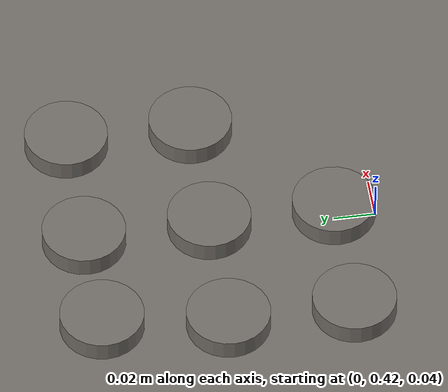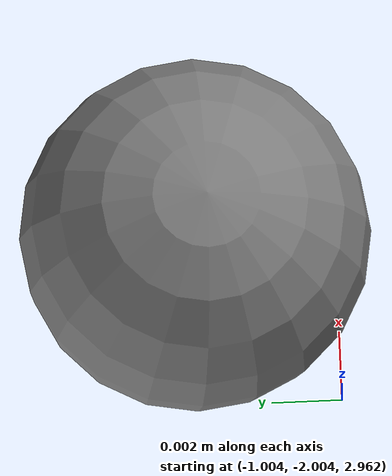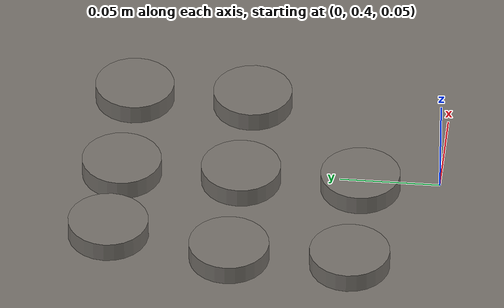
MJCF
<mujoco model="bin_picking scene">

    <compiler angle="degree" coordinate="local"/>
    <asset>
        <material name="bin_material" rgba="0.984 0.353 0.290 1.0"/>
        <material name="framing_material" rgba="0.7 0.7 0.7 1"/>
        <texture name="floor_texture" type="2d" file="bin_picking/diamond_plate.png" />
        <texture name="vancouver-canucks-texture" type="2d" file="bin_picking/vancouver-canucks-logo.png" />
        <texture name="ottawa-senators-texture" type="2d" file="bin_picking/ottawa-senators-logo.png" />
        <texture name="toronto-maple-leafs-texture" type="2d" file="bin_picking/toronto-maple-leafs-logo.png" />
        <texture name="colorado-avalanche-texture" type="2d" file="bin_picking/colorado-avalanche-logo.png" />
        <texture name="calgary-flames-texture" type="2d" file="bin_picking/calgary-flames-logo.png" />
        <texture name="montreal-canadiens-texture" type="2d" file="bin_picking/montreal-canadiens-logo.png" />
        <texture name="edmonton-oilers-texture" type="2d" file="bin_picking/edmonton-oilers-logo.png" />
        <texture name="winnipeg-jets-texture" type="2d" file="bin_picking/winnipeg-jets-logo.png" />

        <!-- Define material using the checker texture -->
        <material name="floor_material" texture="floor_texture" texrepeat="10 10" rgba="0.6 0.6 0.6 1" shininess="0.3" specular="0.3"/>
        <material name="vancouver-canucks-material" texture="vancouver-canucks-texture" rgba="0.6 0.6 0.6 1" shininess="0.3" specular="0.3"/>
        <material name="ottawa-senators-material" texture="ottawa-senators-texture" rgba="0.6 0.6 0.6 1" shininess="0.3" specular="0.3"/>
        <material name="toronto-maple-leafs-material" texture="toronto-maple-leafs-texture" rgba="0.6 0.6 0.6 1" shininess="0.3" specular="0.3"/>
        <material name="colorado-avalanche-material" texture="colorado-avalanche-texture" rgba="0.6 0.6 0.6 1" shininess="0.3" specular="0.3"/>
        <material name="calgary-flames-material" texture="calgary-flames-texture" rgba="0.6 0.6 0.6 1" shininess="0.3" specular="0.3"/>
        <material name="montreal-canadiens-material" texture="montreal-canadiens-texture" rgba="0.6 0.6 0.6 1" shininess="0.3" specular="0.3"/>
        <material name="edmonton-oilers-material" texture="edmonton-oilers-texture" rgba="0.6 0.6 0.6 1" shininess="0.3" specular="0.3"/>
        <material name="winnipeg-jets-material" texture="winnipeg-jets-texture" rgba="0.6 0.6 0.6 1" shininess="0.3" specular="0.3"/>

        <material name="shelf_material" rgba="0.6 0.4 0.2 1"/>
        <material name="cardboard_material" rgba="0.8 0.6 0.4 1"/>
    </asset>

<option timestep="0.001" integrator="implicitfast" gravity="0 0 -9.8">
  	<flag contact="enable" energy="enable"  multiccd="enable"/>
</option>
  <worldbody>
    <light pos="0 0 1.5" dir="0 0 -1" directional="true" />
    <geom
      name="floor"
      pos="0 0 -0.5"
      size="0 0 0.05"
      type="plane"
      material="floor_material"
       contype="1" conaffinity="1" friction="0.5 0.3 0.1" solref="0.02 1" solimp="0.8 0.9 0.001"
    />
    <!-- Scene Camera -->
    <site
      name="scene_camera_optical_frame"
      pos="-1.0 -2.0 2.966"
      euler="3.99 0.000 0"
    />
    <camera
      name="scene_camera"
      pos="-1.0 -2.0 2.966"
      fovy="58"
      mode="fixed"
      resolution="640 480"
      euler="0.849 0.000 0.0"
    />

      <body pos="0 0.5 0.05"  >
        <geom type="cylinder" size="0.02 0.005" material="vancouver-canucks-material" contype="1" conaffinity="1" mass="0.17" friction="0.5 0.3 0.1" solref="0.02 1" solimp="0.8 0.9 0.001" margin="0.0001"/>
        <freejoint />
      </body>
      <body pos="0 0.56 0.05"  >
        <geom type="cylinder" size="0.02 0.005" material="ottawa-senators-material" contype="1" conaffinity="1" mass="0.17" friction="0.5 0.3 0.1" solref="0.02 1" solimp="0.8 0.9 0.001" margin="0.0001"/>
        <freejoint />
      </body>
      <body pos="0.06 0.5 0.05" >
        <geom type="cylinder" size="0.02 0.005"  material="toronto-maple-leafs-material" contype="1" conaffinity="1" mass="0.17" friction="0.5 0.3 0.1" solref="0.02 1" solimp="0.8 0.9 0.001" margin="0.0001"/>
        <freejoint />
      </body>
      <body pos="0.06 0.56 0.05" >
        <geom type="cylinder" size="0.02 0.005"  material="colorado-avalanche-material" contype="1" conaffinity="1" mass="0.17" friction="0.5 0.3 0.1" solref="0.02 1" solimp="0.8 0.9 0.001" margin="0.0001"/>
        <freejoint />
      </body>
      <body pos="0 0.44 0.05"  >
        <geom type="cylinder" size="0.02 0.005" material="calgary-flames-material" contype="1" conaffinity="1" mass="0.17" friction="0.5 0.3 0.1" solref="0.02 1" solimp="0.8 0.9 0.001" margin="0.0001"/>
        <freejoint />
      </body>
      <body pos="-0.06 0.5 0.05" >
        <geom type="cylinder" size="0.02 0.005"  material="montreal-canadiens-material" contype="1" conaffinity="1" mass="0.17" friction="0.5 0.3 0.1" solref="0.02 1" solimp="0.8 0.9 0.001" margin="0.0001"/>
        <freejoint />
      </body>
      <body pos="-0.06 0.44 0.05" >
        <geom type="cylinder" size="0.02 0.005"  material="edmonton-oilers-material" contype="1" conaffinity="1" mass="0.17" friction="0.5 0.3 0.1" solref="0.02 1" solimp="0.8 0.9 0.001" margin="0.0001"/>
        <freejoint />
      </body>
      <body pos="-0.06 0.56 0.06" >
        <geom type="cylinder" size="0.02 0.005"  material="winnipeg-jets-material" contype="1" conaffinity="1" mass="0.17" friction="0.5 0.3 0.1" solref="0.02 1" solimp="0.8 0.9 0.001" margin="0.0001"/>
        <freejoint />
      </body>

  </worldbody>
</mujoco>
